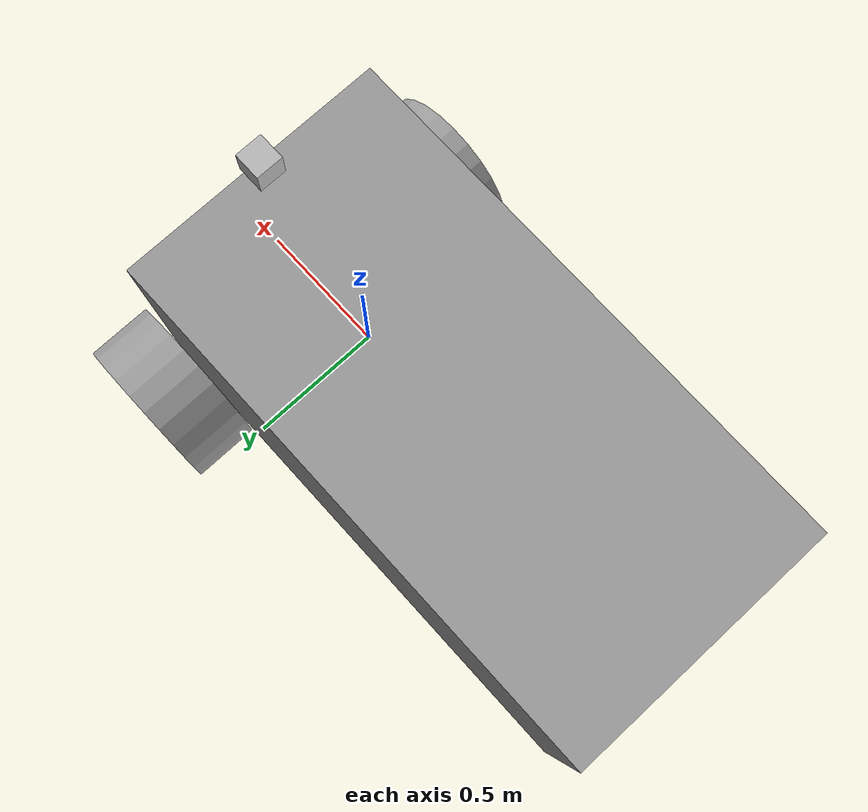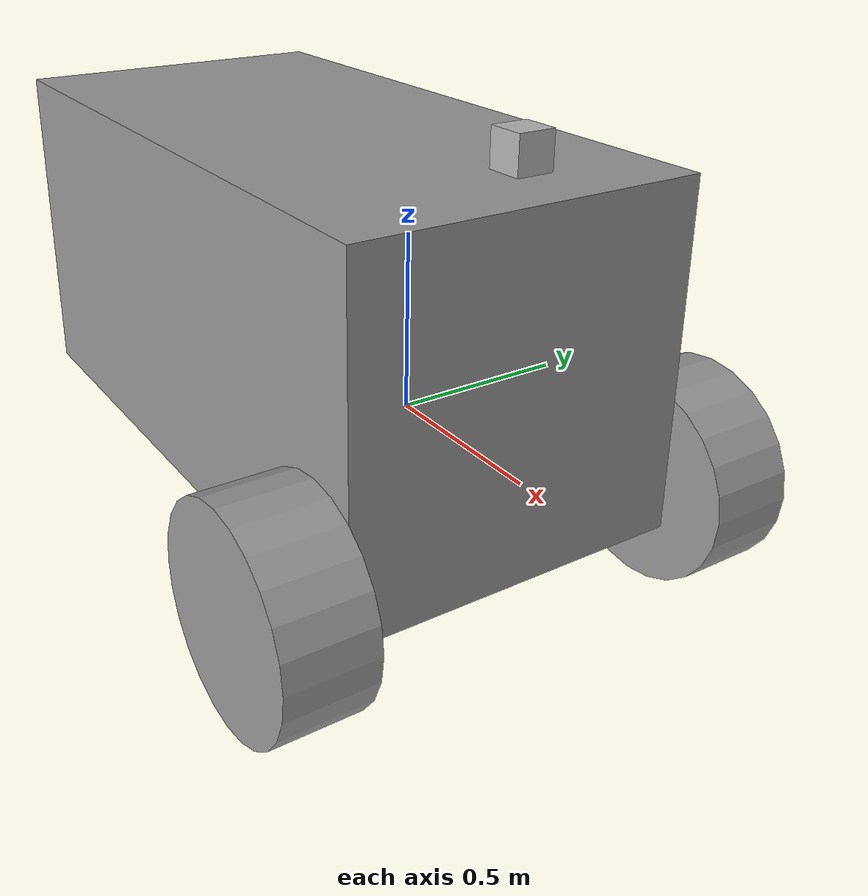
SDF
<?xml version='1.0'?>
<sdf version='1.6'>
  <model name='ownmodel'>
    <model name='first_vehcile_0'>
      <link name='link'>
        <inertial>
          <mass>1</mass>
          <inertia>
            <ixx>0.122564</ixx>
            <ixy>0</ixy>
            <ixz>0</ixz>
            <iyy>0.407773</iyy>
            <iyz>0</iyz>
            <izz>0.472213</izz>
          </inertia>
          <pose frame=''>0 0 0 0 -0 0</pose>
        </inertial>
        <self_collide>0</self_collide>
        <enable_wind>0</enable_wind>
        <kinematic>0</kinematic>
        <pose frame=''>-0.506092 0.015491 0.2 0 -0 0</pose>
        <gravity>1</gravity>
        <visual name='visual'>
          <geometry>
            <box>
              <size>2 1 1</size>
            </box>
          </geometry>
          <material>
            <script>
              <name>Gazebo/Grey</name>
              <uri>file://media/materials/scripts/gazebo.material</uri>
            </script>
            <shader type='vertex'>
              <normal_map>__default__</normal_map>
            </shader>
            <ambient>0.3 0.3 0.3 1</ambient>
            <diffuse>0.7 0.7 0.7 1</diffuse>
            <specular>0.01 0.01 0.01 1</specular>
            <emissive>0 0 0 1</emissive>
          </material>
          <pose frame=''>0 0 0 0 -0 0</pose>
          <transparency>0</transparency>
          <cast_shadows>1</cast_shadows>
        </visual>
        <collision name='collision'>
          <laser_retro>0</laser_retro>
          <max_contacts>10</max_contacts>
          <pose frame=''>0 0 0 0 -0 0</pose>
          <geometry>
            <box>
              <size>2 1 1</size>
            </box>
          </geometry>
          <surface>
            <friction>
              <ode>
                <mu>1</mu>
                <mu2>1</mu2>
                <fdir1>0 0 0</fdir1>
                <slip1>0</slip1>
                <slip2>0</slip2>
              </ode>
              <torsional>
                <coefficient>1</coefficient>
                <patch_radius>0</patch_radius>
                <surface_radius>0</surface_radius>
                <use_patch_radius>1</use_patch_radius>
                <ode>
                  <slip>0</slip>
                </ode>
              </torsional>
            </friction>
            <bounce>
              <restitution_coefficient>0</restitution_coefficient>
              <threshold>1e+06</threshold>
            </bounce>
            <contact>
              <collide_without_contact>0</collide_without_contact>
              <collide_without_contact_bitmask>1</collide_without_contact_bitmask>
              <collide_bitmask>1</collide_bitmask>
              <ode>
                <soft_cfm>0</soft_cfm>
                <soft_erp>0.2</soft_erp>
                <kp>1e+13</kp>
                <kd>1</kd>
                <max_vel>0.01</max_vel>
                <min_depth>0</min_depth>
              </ode>
              <bullet>
                <split_impulse>1</split_impulse>
                <split_impulse_penetration_threshold>-0.01</split_impulse_penetration_threshold>
                <soft_cfm>0</soft_cfm>
                <soft_erp>0.2</soft_erp>
                <kp>1e+13</kp>
                <kd>1</kd>
              </bullet>
            </contact>
          </surface>
        </collision>
      </link>
      <link name='link_0'>
        <inertial>
          <mass>1</mass>
          <inertia>
            <ixx>0.145833</ixx>
            <ixy>0</ixy>
            <ixz>0</ixz>
            <iyy>0.145833</iyy>
            <iyz>0</iyz>
            <izz>0.125</izz>
          </inertia>
          <pose frame=''>0 0 0 0 -0 0</pose>
        </inertial>
        <pose frame=''>0.38 0.65 -0.2 1.5707 -0 0</pose>
        <gravity>1</gravity>
        <self_collide>0</self_collide>
        <kinematic>0</kinematic>
        <enable_wind>0</enable_wind>
        <visual name='visual'>
          <pose frame=''>0 0 0 0 -0 0</pose>
          <geometry>
            <cylinder>
              <radius>0.3</radius>
              <length>0.25</length>
            </cylinder>
          </geometry>
          <material>
            <lighting>1</lighting>
            <script>
              <uri>file://media/materials/scripts/gazebo.material</uri>
              <name>Gazebo/Grey</name>
            </script>
            <shader type='vertex'>
              <normal_map>__default__</normal_map>
            </shader>
            <ambient>0.3 0.3 0.3 1</ambient>
            <diffuse>0.7 0.7 0.7 1</diffuse>
            <specular>0.01 0.01 0.01 1</specular>
            <emissive>0 0 0 1</emissive>
          </material>
          <transparency>0</transparency>
          <cast_shadows>1</cast_shadows>
        </visual>
        <collision name='collision'>
          <laser_retro>0</laser_retro>
          <max_contacts>10</max_contacts>
          <pose frame=''>0 0 0 0 -0 0</pose>
          <geometry>
            <cylinder>
              <radius>0.3</radius>
              <length>0.25</length>
            </cylinder>
          </geometry>
          <surface>
            <friction>
              <ode>
                <mu>1</mu>
                <mu2>1</mu2>
                <fdir1>0 0 0</fdir1>
                <slip1>0</slip1>
                <slip2>0</slip2>
              </ode>
              <torsional>
                <coefficient>1</coefficient>
                <patch_radius>0</patch_radius>
                <surface_radius>0</surface_radius>
                <use_patch_radius>1</use_patch_radius>
                <ode>
                  <slip>0</slip>
                </ode>
              </torsional>
            </friction>
            <bounce>
              <restitution_coefficient>0</restitution_coefficient>
              <threshold>1e+06</threshold>
            </bounce>
            <contact>
              <collide_without_contact>0</collide_without_contact>
              <collide_without_contact_bitmask>1</collide_without_contact_bitmask>
              <collide_bitmask>1</collide_bitmask>
              <ode>
                <soft_cfm>0</soft_cfm>
                <soft_erp>0.2</soft_erp>
                <kp>1e+13</kp>
                <kd>1</kd>
                <max_vel>0.01</max_vel>
                <min_depth>0</min_depth>
              </ode>
              <bullet>
                <split_impulse>1</split_impulse>
                <split_impulse_penetration_threshold>-0.01</split_impulse_penetration_threshold>
                <soft_cfm>0</soft_cfm>
                <soft_erp>0.2</soft_erp>
                <kp>1e+13</kp>
                <kd>1</kd>
              </bullet>
            </contact>
          </surface>
        </collision>
      </link>
      <link name='link_0_clone'>
        <inertial>
          <mass>1</mass>
          <inertia>
            <ixx>0.145833</ixx>
            <ixy>0</ixy>
            <ixz>0</ixz>
            <iyy>0.145833</iyy>
            <iyz>0</iyz>
            <izz>0.125</izz>
          </inertia>
          <pose frame=''>0 0 0 0 -0 0</pose>
        </inertial>
        <pose frame=''>0.357708 -0.62 -0.2 1.5707 -0 0</pose>
        <gravity>1</gravity>
        <self_collide>0</self_collide>
        <kinematic>0</kinematic>
        <enable_wind>0</enable_wind>
        <visual name='visual'>
          <pose frame=''>0 0 0 0 -0 0</pose>
          <geometry>
            <cylinder>
              <radius>0.3</radius>
              <length>0.25</length>
            </cylinder>
          </geometry>
          <material>
            <lighting>1</lighting>
            <script>
              <uri>file://media/materials/scripts/gazebo.material</uri>
              <name>Gazebo/Grey</name>
            </script>
            <shader type='vertex'>
              <normal_map>__default__</normal_map>
            </shader>
            <ambient>0.3 0.3 0.3 1</ambient>
            <diffuse>0.7 0.7 0.7 1</diffuse>
            <specular>0.01 0.01 0.01 1</specular>
            <emissive>0 0 0 1</emissive>
          </material>
          <transparency>0</transparency>
          <cast_shadows>1</cast_shadows>
        </visual>
        <collision name='collision'>
          <laser_retro>0</laser_retro>
          <max_contacts>10</max_contacts>
          <pose frame=''>0 0 0 0 -0 0</pose>
          <geometry>
            <cylinder>
              <radius>0.3</radius>
              <length>0.25</length>
            </cylinder>
          </geometry>
          <surface>
            <friction>
              <ode>
                <mu>1</mu>
                <mu2>1</mu2>
                <fdir1>0 0 0</fdir1>
                <slip1>0</slip1>
                <slip2>0</slip2>
              </ode>
              <torsional>
                <coefficient>1</coefficient>
                <patch_radius>0</patch_radius>
                <surface_radius>0</surface_radius>
                <use_patch_radius>1</use_patch_radius>
                <ode>
                  <slip>0</slip>
                </ode>
              </torsional>
            </friction>
            <bounce>
              <restitution_coefficient>0</restitution_coefficient>
              <threshold>1e+06</threshold>
            </bounce>
            <contact>
              <collide_without_contact>0</collide_without_contact>
              <collide_without_contact_bitmask>1</collide_without_contact_bitmask>
              <collide_bitmask>1</collide_bitmask>
              <ode>
                <soft_cfm>0</soft_cfm>
                <soft_erp>0.2</soft_erp>
                <kp>1e+13</kp>
                <kd>1</kd>
                <max_vel>0.01</max_vel>
                <min_depth>0</min_depth>
              </ode>
              <bullet>
                <split_impulse>1</split_impulse>
                <split_impulse_penetration_threshold>-0.01</split_impulse_penetration_threshold>
                <soft_cfm>0</soft_cfm>
                <soft_erp>0.2</soft_erp>
                <kp>1e+13</kp>
                <kd>1</kd>
              </bullet>
            </contact>
          </surface>
        </collision>
      </link>
      <link name='link_1'>
        <inertial>
          <mass>1</mass>
          <inertia>
            <ixx>0.1</ixx>
            <ixy>0</ixy>
            <ixz>0</ixz>
            <iyy>0.1</iyy>
            <iyz>0</iyz>
            <izz>0.1</izz>
          </inertia>
          <pose frame=''>0 0 0 0 -0 0</pose>
        </inertial>
        <pose frame=''>-1.39104 0.018049 -0.3 0 -0 0</pose>
        <gravity>1</gravity>
        <self_collide>0</self_collide>
        <kinematic>0</kinematic>
        <enable_wind>0</enable_wind>
        <visual name='visual'>
          <pose frame=''>0 0 0 0 -0 0</pose>
          <geometry>
            <sphere>
              <radius>0.15</radius>
            </sphere>
          </geometry>
          <material>
            <lighting>1</lighting>
            <script>
              <uri>file://media/materials/scripts/gazebo.material</uri>
              <name>Gazebo/Grey</name>
            </script>
            <shader type='vertex'>
              <normal_map>__default__</normal_map>
            </shader>
            <ambient>0.3 0.3 0.3 1</ambient>
            <diffuse>0.7 0.7 0.7 1</diffuse>
            <specular>0.01 0.01 0.01 1</specular>
            <emissive>0 0 0 1</emissive>
          </material>
          <transparency>0</transparency>
          <cast_shadows>1</cast_shadows>
        </visual>
        <collision name='collision'>
          <laser_retro>0</laser_retro>
          <max_contacts>10</max_contacts>
          <pose frame=''>0 0 0 0 -0 0</pose>
          <geometry>
            <sphere>
              <radius>0.15</radius>
            </sphere>
          </geometry>
          <surface>
            <friction>
              <ode>
                <mu>1</mu>
                <mu2>1</mu2>
                <fdir1>0 0 0</fdir1>
                <slip1>0</slip1>
                <slip2>0</slip2>
              </ode>
              <torsional>
                <coefficient>1</coefficient>
                <patch_radius>0</patch_radius>
                <surface_radius>0</surface_radius>
                <use_patch_radius>1</use_patch_radius>
                <ode>
                  <slip>0</slip>
                </ode>
              </torsional>
            </friction>
            <bounce>
              <restitution_coefficient>0</restitution_coefficient>
              <threshold>1e+06</threshold>
            </bounce>
            <contact>
              <collide_without_contact>0</collide_without_contact>
              <collide_without_contact_bitmask>1</collide_without_contact_bitmask>
              <collide_bitmask>1</collide_bitmask>
              <ode>
                <soft_cfm>0</soft_cfm>
                <soft_erp>0.2</soft_erp>
                <kp>1e+13</kp>
                <kd>1</kd>
                <max_vel>0.01</max_vel>
                <min_depth>0</min_depth>
              </ode>
              <bullet>
                <split_impulse>1</split_impulse>
                <split_impulse_penetration_threshold>-0.01</split_impulse_penetration_threshold>
                <soft_cfm>0</soft_cfm>
                <soft_erp>0.2</soft_erp>
                <kp>1e+13</kp>
                <kd>1</kd>
              </bullet>
            </contact>
          </surface>
        </collision>
      </link>
      <model name='camera'>
        <pose frame=''>0.434372 0.004872 0.816972 0 -0 0</pose>
        <link name='link'>
          <inertial>
            <mass>0.1</mass>
            <inertia>
              <ixx>0.000166667</ixx>
              <iyy>0.000166667</iyy>
              <izz>0.000166667</izz>
              <ixy>0</ixy>
              <ixz>0</ixz>
              <iyz>0</iyz>
            </inertia>
          </inertial>
          <collision name='collision'>
            <geometry>
              <box>
                <size>0.1 0.1 0.1</size>
              </box>
            </geometry>
          </collision>
          <visual name='visual'>
            <geometry>
              <box>
                <size>0.1 0.1 0.1</size>
              </box>
            </geometry>
          </visual>
          <sensor name='camera' type='camera'>
            <camera name='__default__'>
              <horizontal_fov>1.047</horizontal_fov>
              <image>
                <width>320</width>
                <height>240</height>
              </image>
              <clip>
                <near>0.1</near>
                <far>100</far>
              </clip>
            </camera>
            <always_on>1</always_on>
            <update_rate>30</update_rate>
            <visualize>1</visualize>
          </sensor>
        </link>
      </model>
      <joint name='link_JOINT_0' type='revolute'>
        <parent>link</parent>
        <child>link_0</child>
        <pose frame=''>0 0 0 0 -0 0</pose>
        <axis>
          <xyz>1 0 0</xyz>
          <use_parent_model_frame>0</use_parent_model_frame>
          <limit>
            <lower>-1.79769e+308</lower>
            <upper>1.79769e+308</upper>
            <effort>-1</effort>
            <velocity>-1</velocity>
          </limit>
          <dynamics>
            <spring_reference>0</spring_reference>
            <spring_stiffness>0</spring_stiffness>
            <damping>0</damping>
          </dynamics>
        </axis>
        <physics>
          <ode>
            <limit>
              <cfm>0</cfm>
              <erp>0.2</erp>
            </limit>
            <suspension>
              <cfm>0</cfm>
              <erp>0.2</erp>
            </suspension>
          </ode>
        </physics>
      </joint>
      <joint name='link_JOINT_2' type='revolute'>
        <parent>link</parent>
        <child>link_0_clone</child>
        <pose frame=''>0 0 0 0 -0 0</pose>
        <axis>
          <xyz>1 0 0</xyz>
          <use_parent_model_frame>0</use_parent_model_frame>
          <limit>
            <lower>-1.79769e+308</lower>
            <upper>1.79769e+308</upper>
            <effort>-1</effort>
            <velocity>-1</velocity>
          </limit>
          <dynamics>
            <spring_reference>0</spring_reference>
            <spring_stiffness>0</spring_stiffness>
            <damping>0</damping>
          </dynamics>
        </axis>
        <physics>
          <ode>
            <limit>
              <cfm>0</cfm>
              <erp>0.2</erp>
            </limit>
            <suspension>
              <cfm>0</cfm>
              <erp>0.2</erp>
            </suspension>
          </ode>
        </physics>
      </joint>
      <joint name='link_JOINT_3' type='ball'>
        <parent>link</parent>
        <child>link_1</child>
        <pose frame=''>0 0 0 0 -0 0</pose>
        <physics>
          <ode>
            <limit>
              <cfm>0</cfm>
              <erp>0.2</erp>
            </limit>
            <suspension>
              <cfm>0</cfm>
              <erp>0.2</erp>
            </suspension>
          </ode>
        </physics>
      </joint>
      <joint name='link_JOINT_7' type='revolute'>
        <parent>link</parent>
        <child>camera::link</child>
        <pose frame=''>0 0 0 0 -0 0</pose>
        <axis>
          <xyz>1 0 0</xyz>
          <use_parent_model_frame>0</use_parent_model_frame>
          <limit>
            <lower>-1.79769e+308</lower>
            <upper>1.79769e+308</upper>
            <effort>-1</effort>
            <velocity>-1</velocity>
          </limit>
          <dynamics>
            <spring_reference>0</spring_reference>
            <spring_stiffness>0</spring_stiffness>
            <damping>0</damping>
          </dynamics>
        </axis>
        <physics>
          <ode>
            <limit>
              <cfm>0</cfm>
              <erp>0.2</erp>
            </limit>
            <suspension>
              <cfm>0</cfm>
              <erp>0.2</erp>
            </suspension>
          </ode>
        </physics>
      </joint>
      <static>0</static>
      <allow_auto_disable>1</allow_auto_disable>
      <plugin name='follower' filename='libFollowerPlugin.so'/>
      <pose frame=''>2e-06 -3e-06 0 0 -0 0</pose>
    </model>
    <static>0</static>
    <allow_auto_disable>1</allow_auto_disable>
  </model>
</sdf>
